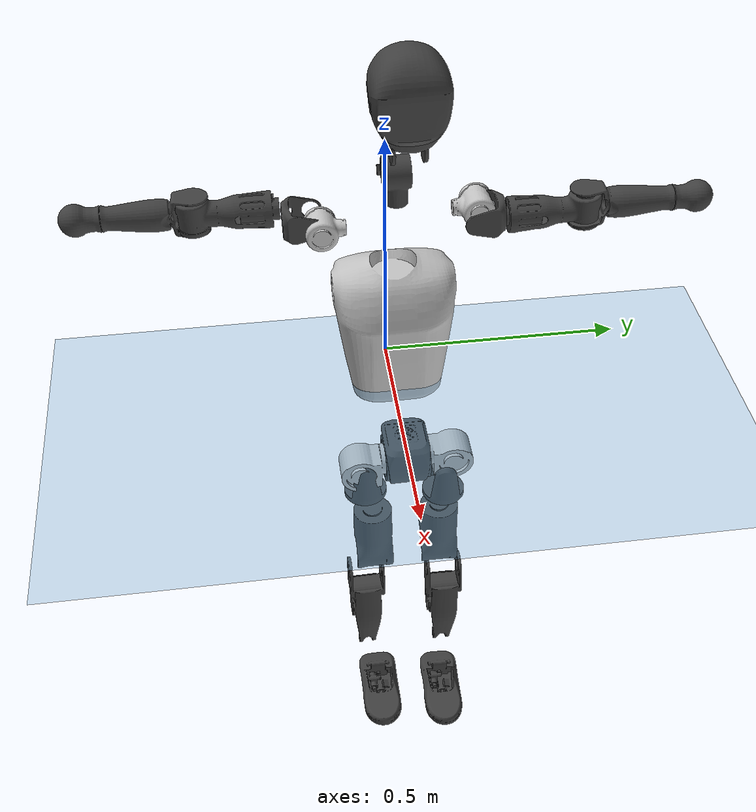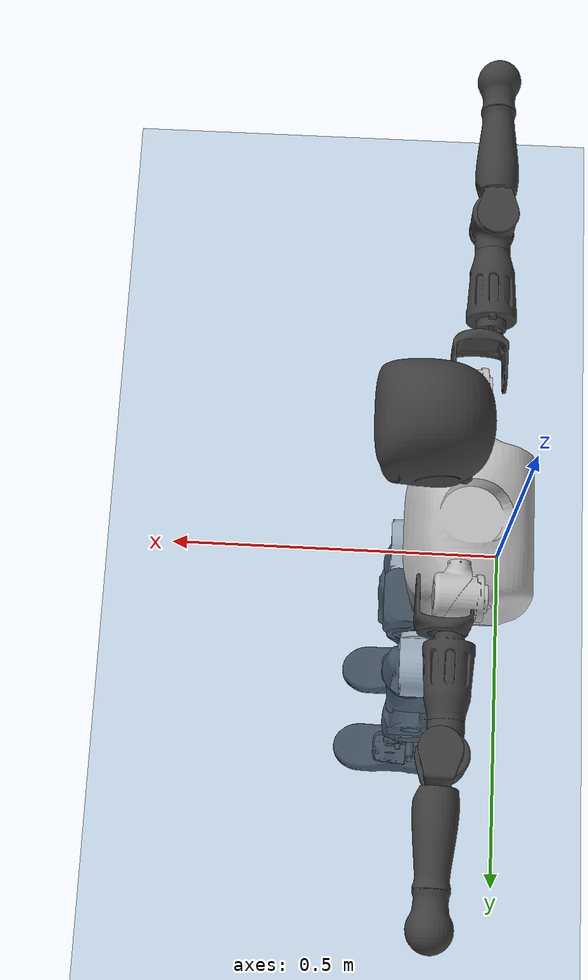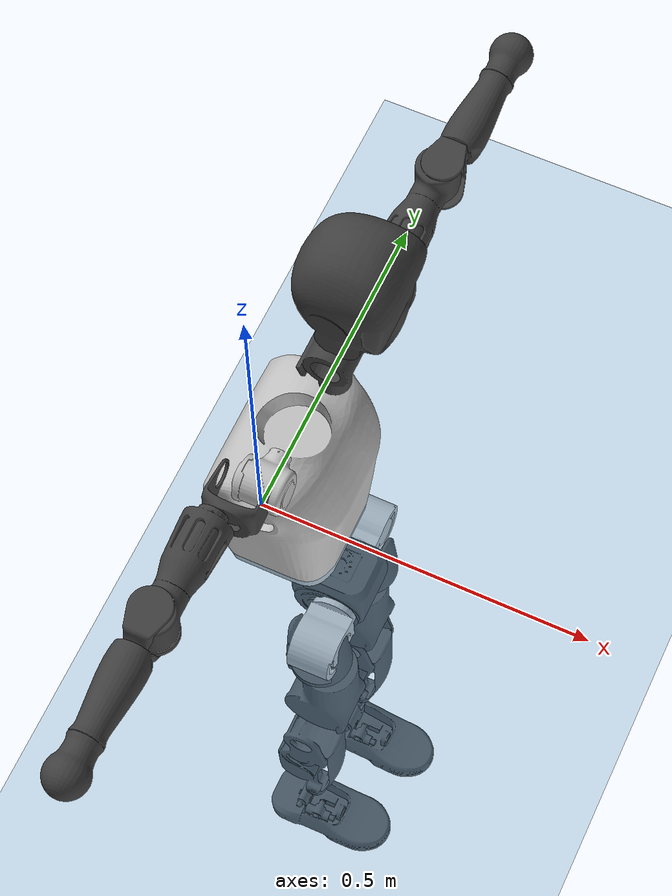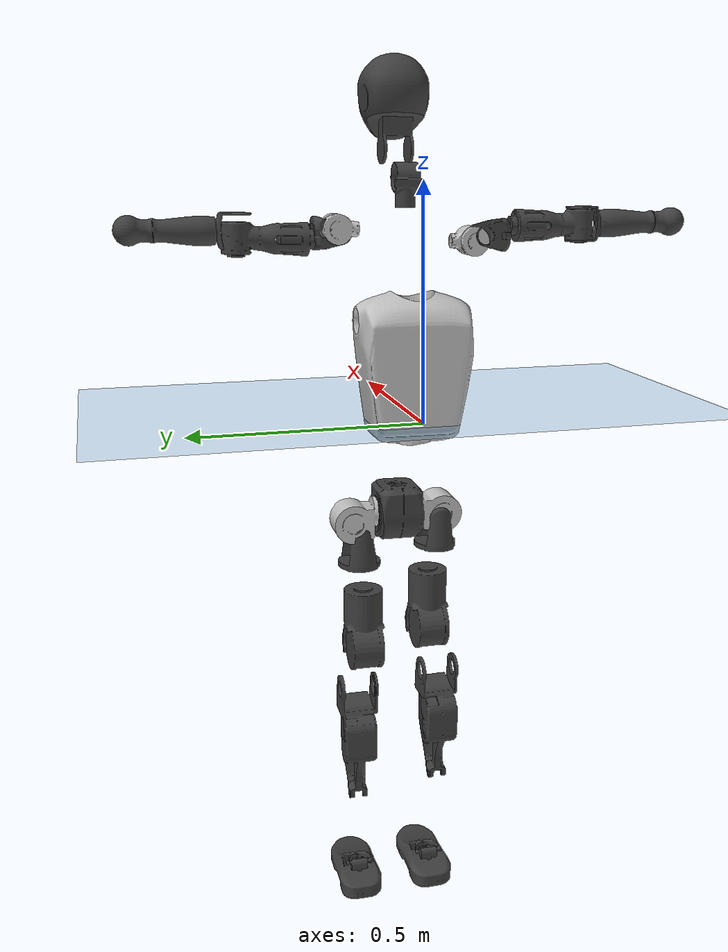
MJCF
<mujoco model="T1">
  <compiler angle="radian" assetdir="assets" balanceinertia="true" inertiafromgeom="false"/>

  <option timestep="0.005" density="1.2" viscosity="2e-05"/>

  <size nkey="1"/>

  <visual>
    <quality shadowsize="8192"/>
    <map shadowclip="0.5"/>
  </visual>

  <default>
    <default class="/">
      <joint armature="0.01" damping="0.01" frictionloss="0.1"/>
      <geom contype="0" conaffinity="0" group="1" solref="-1000 -80"/>
      <site size="0.01 0.005 0.005" group="5"/>
      <general forcelimited="true" biastype="affine" gainprm="25" biasprm="0 -25 -0.6"/>
      <default class="t1">
        <geom rgba="0.25 0.25 0.25 1"/>
        <default class="visual">
          <geom type="mesh" group="2"/>
        </default>
        <default class="collision">
          <geom group="3"/>
        </default>
        <default class="foot">
          <geom size="0.1115 0.05 0.015" type="box" condim="6" group="4" priority="1" solimp="0.015 1 0.015"/>
        </default>
        <default class="reward_collision_sphere">
          <geom group="5" rgba="1 0 0 1"/>
        </default>
      </default>
    </default>
  </default>

  <asset>
    <texture type="skybox" colorspace="auto" name="//unnamed_texture_0" builtin="gradient" rgb1="0.95 0.95 0.95" rgb2="0.95 0.95 0.95" width="100" height="600"/>
    <texture type="2d" colorspace="auto" name="texplane" builtin="checker" rgb1="0.345 0.575 0.748" rgb2="0.345 0.575 0.748" markrgb="1 1 1" width="512" height="512"/>
    <material name="MatPlane" class="/" texture="texplane" texuniform="true" texrepeat="2 2" specular="0.9"/>
    <mesh name="Trunk" class="/" file="Trunk.stl"/>
    <mesh name="H1" class="/" file="H1.stl"/>
    <mesh name="H2" class="/" file="H2.stl"/>
    <mesh name="AL1" class="/" file="AL1.stl"/>
    <mesh name="AL2" class="/" file="AL2.stl"/>
    <mesh name="AL3" class="/" file="AL3.stl"/>
    <mesh name="left_hand_link" class="/" file="left_hand_link.stl"/>
    <mesh name="AR1" class="/" file="AR1.stl"/>
    <mesh name="AR2" class="/" file="AR2.stl"/>
    <mesh name="AR3" class="/" file="AR3.stl"/>
    <mesh name="right_hand_link" class="/" file="right_hand_link.stl"/>
    <mesh name="Waist" class="/" file="Waist.stl"/>
    <mesh name="Hip_Pitch_Left" class="/" file="Hip_Pitch_Left.stl"/>
    <mesh name="Hip_Roll_Left" class="/" file="Hip_Roll_Left.stl"/>
    <mesh name="Hip_Yaw_Left" class="/" file="Hip_Yaw_Left.stl"/>
    <mesh name="Shank_Left" class="/" file="Shank_Left.stl"/>
    <mesh name="Ankle_Cross_Left" class="/" file="Ankle_Cross_Left.stl"/>
    <mesh name="left_foot_link" class="/" file="left_foot_link.stl"/>
    <mesh name="Hip_Pitch_Right" class="/" file="Hip_Pitch_Right.stl"/>
    <mesh name="Hip_Roll_Right" class="/" file="Hip_Roll_Right.stl"/>
    <mesh name="Hip_Yaw_Right" class="/" file="Hip_Yaw_Right.stl"/>
    <mesh name="Shank_Right" class="/" file="Shank_Right.stl"/>
    <mesh name="Ankle_Cross_Right" class="/" file="Ankle_Cross_Right.stl"/>
    <mesh name="right_foot_link" class="/" file="right_foot_link.stl"/>
  </asset>

  <worldbody>
    <geom name="floor" class="/" size="100 100 0.125" type="plane" group="0" material="MatPlane"/>
    <light name="toplight_shadow" class="/" pos="0 0 5" dir="0.0990148 0.0990148 -0.990148" type="directional" ambient="0.04 0.04 0.04" diffuse="0.55 0.55 0.55" specular="0.12 0.12 0.12"/>
    <light name="toplight_fill" class="/" pos="0 0 5" dir="0.0990148 0.0990148 -0.990148" type="directional" castshadow="false" ambient="0.04 0.04 0.04" diffuse="0.3 0.3 0.3" specular="0.08 0.08 0.08"/>
    <body name="trunk" childclass="t1" pos="-0.00107024 0.0118179 -0.00514561" quat="0.999973 0.00700652 -0.00213055 0.000224844">
      <inertial pos="0.0878785 0.00992155 0.188919" quat="0.997034 0.0162714 -0.0366367 -0.0656908" mass="38.0876" diaginertia="0.81299 0.0801675 0.760307"/>
      <joint name="//unnamed_joint_0" type="free" armature="0" damping="0" frictionloss="0"/>
      <geom name="//unnamed_geom_1" class="visual" rgba="0.76 0.76 0.76 1" mesh="Trunk"/>
      <geom name="//unnamed_geom_2" class="collision" size="0.112225 0.149633 0.22445" pos="0.102533 0 0.211439" type="box"/>
      <geom name="//unnamed_geom_3" class="reward_collision_sphere" size="0.172078" pos="0.102533 0 0.176199"/>
      <geom name="//unnamed_geom_4" class="reward_collision_sphere" size="0.022445" pos="0.102533 0.0865405 0"/>
      <geom name="//unnamed_geom_5" class="reward_collision_sphere" size="0.022445" pos="0.102533 -0.0865405 0"/>
      <geom name="//unnamed_geom_6" class="reward_collision_sphere" size="0.022445" pos="0.102533 0.108939 0.317158"/>
      <geom name="//unnamed_geom_7" class="reward_collision_sphere" size="0.022445" pos="0.102533 -0.108939 0.317158"/>
      <site name="imu" pos="-0.0714843 0.00173071 0.0706746" size="0.0149633"/>
      <camera name="track" pos="0 -2.03625 0" quat="0.707107 0.707107 0 0" mode="trackcom"/>
      <camera name="ego_camera" pos="0.208485 0 0.740036" quat="-0.5 -0.5 0.5 0.5"/>
      <body name="H1" pos="0.122221 0.000421551 0.445895" quat="0.999999 -0.000911419 0.000153243 -0.000785594">
        <inertial pos="0.00014516 0.00376321 0.100589" quat="0.763558 -0.0129632 0.0192724 0.645322" mass="1.44949" diaginertia="0.0043032 0.000228774 0.00251696"/>
        <joint name="AAHead_yaw" pos="0 0 0" axis="0.000713253 -0.035104 0.999383" range="-1.8553 1.47892" armature="0.00181755" damping="0" frictionloss="0.0221695"/>
        <geom name="//unnamed_geom_8" class="visual" mesh="H1"/>
        <body name="H2" pos="0.0108583 0.0197447 0.117484" quat="0.999987 0.00220408 0.0023698 0.00404228">
          <inertial pos="-0.00214834 0.0171611 0.192576" quat="0.993272 0.11158 -0.0245078 -0.0189842" mass="1.7096" diaginertia="0.0257185 0.00244214 0.0264989"/>
          <joint name="Head_pitch" pos="0 0 0" axis="0.013816 -0.998851 -0.0458933" stiffness="0.00327387" range="-1.34677 0.517708" armature="0.00481496" damping="0.0899475" frictionloss="0.101885"/>
          <geom name="//unnamed_geom_9" class="visual" mesh="H2"/>
          <geom name="//unnamed_geom_10" class="collision" size="0.119707" pos="0.0170889 0 0.193819"/>
          <geom name="//unnamed_geom_11" class="reward_collision_sphere" size="0.13467" pos="0.0341778 0 0.176199"/>
        </body>
      </body>
      <body name="AL1" pos="0.0907694 0.109431 0.403492" quat="0.99996 0.00571312 -0.00231597 -0.00654913">
        <inertial pos="0.0121696 0.0399408 0.00535659" quat="0.504362 0.501095 -0.504178 0.490232" mass="2.06628" diaginertia="0.022926 0.00199964 0.00687499"/>
        <joint name="Left_Shoulder_Pitch" pos="0 0 0" axis="0.0610913 0.99738 0.0387512" range="-3.05888 0.856223" armature="0.0138136" damping="0.0909782" frictionloss="0.0595084"/>
        <geom name="//unnamed_geom_12" class="visual" rgba="0.76 0.76 0.76 1" mesh="AL1"/>
        <body name="AL2" pos="0.0169822 0.0378762 -0.00976028" quat="0.999999 -0.000654802 0.000959607 0.000327506">
          <inertial pos="0.0174303 0.0211542 0.0115778" quat="0.490702 0.497661 -0.471368 0.53792" mass="0.480496" diaginertia="0.00463616 0.000285876 0.00289698"/>
          <joint name="Left_Shoulder_Roll" pos="0 0 0" axis="-0.999422 0.0101789 -0.0324303" stiffness="0.0981452" range="-1.80426 1.63768" armature="0.00175507" damping="0" frictionloss="0.137181"/>
          <geom name="//unnamed_geom_13" class="visual" mesh="AL2"/>
          <body name="AL3" pos="-0.00946597 0.0666164 -0.0122219" quat="0.999992 0.00245925 0.0014737 -0.00281881">
            <inertial pos="-0.0166042 0.104493 -0.010516" quat="0.69632 0.715151 0.00143315 -0.0607804" mass="4.94203" diaginertia="0.17875 0.0157072 0.014859"/>
            <joint name="Left_Elbow_Pitch" pos="0 0 0" axis="-0.0511441 -0.998359 0.0257628" stiffness="0.0529768" range="-1.90147 2.47961" armature="0.000780224" damping="0.0193396" frictionloss="0.180912"/>
            <geom name="//unnamed_geom_14" class="visual" mesh="AL3"/>
            <geom name="//unnamed_geom_15" class="collision" size="0.04489 0.112225" pos="0 0.0509062 0" quat="0.707105 0.707108 0 0" type="cylinder"/>
            <geom name="//unnamed_geom_16" class="reward_collision_sphere" size="0.053868"/>
            <body name="left_hand_link" pos="0.00821061 0.142555 0.0135129" quat="0.999959 -0.00629689 -0.00395441 -0.00517466">
              <inertial pos="0.0183411 0.100842 0.00245673" quat="0.694094 0.718932 0.03106 -0.0201398" mass="1.1663" diaginertia="0.146895 0.00787909 0.00294505"/>
              <joint name="Left_Elbow_Yaw" pos="0 0 0" axis="0.000199827 4.81704e-05 1" range="-2.33838 0.373198" armature="0.0201393" damping="0" frictionloss="0.121445"/>
              <geom name="//unnamed_geom_17" class="visual" mesh="left_hand_link"/>
              <geom name="//unnamed_geom_18" class="collision" size="0.04489 0.130929" pos="0 0.132356 0" quat="0.707105 0.707108 0 0" type="cylinder"/>
              <geom name="//unnamed_geom_19" class="reward_collision_sphere" size="0.0748167"/>
              <geom name="//unnamed_geom_20" class="reward_collision_sphere" size="0.0523717" pos="0 0.111994 0"/>
              <geom name="//unnamed_geom_21" class="reward_collision_sphere" size="0.0523717" pos="0 0.218897 0"/>
            </body>
          </body>
        </body>
      </body>
      <body name="AR1" pos="0.0881135 -0.0911665 0.379132" quat="0.999988 -0.00309215 -0.0036921 0.000337958">
        <inertial pos="0.012102 -0.0262874 0.00822788" quat="0.487895 0.546767 -0.467513 0.494405" mass="1.88519" diaginertia="0.0273713 0.00180282 0.00518721"/>
        <joint name="Right_Shoulder_Pitch" pos="0 0 0" axis="0.0681529 -0.996705 -0.0439855" stiffness="0.096509" range="-1.30349 3.55107" armature="0.00261353" damping="0.0650786" frictionloss="0.23522"/>
        <geom name="//unnamed_geom_22" class="visual" rgba="0.76 0.76 0.76 1" mesh="AR1"/>
        <body name="AR2" pos="-0.0186063 -0.061378 0.0126462" quat="0.999963 -0.002021 0.00827307 -0.000850381">
          <inertial pos="0.0199888 -0.0429928 0.0100287" quat="0.515467 0.494919 -0.541878 0.4424" mass="0.643802" diaginertia="0.00579432 0.000293476 0.00326195"/>
          <joint name="Right_Shoulder_Roll" pos="0 0 0" axis="-0.999366 -0.0306886 0.018062" stiffness="0.0271578" range="-1.94059 1.37851" armature="0.0131034" damping="0" frictionloss="0.00341453"/>
          <geom name="//unnamed_geom_23" class="visual" mesh="AR2"/>
          <body name="AR3" pos="-0.0127611 -0.071566 0.0198148" quat="1 3.34655e-05 -0.00032663 -0.000200766">
            <inertial pos="-0.00461421 -0.0697061 0.0107657" quat="0.68597 0.723524 -0.0746025 0.0198179" mass="3.28492" diaginertia="0.183451 0.0148968 0.00808317"/>
            <joint name="Right_Elbow_Pitch" pos="0 0 0" axis="-0.067436 0.996551 0.0483523" range="-1.93721 2.52483" armature="0.0286852" damping="0" frictionloss="0.0485689"/>
            <geom name="//unnamed_geom_24" class="visual" mesh="AR3"/>
            <geom name="//unnamed_geom_25" class="collision" size="0.04489 0.112225" pos="0 -0.0509062 0" quat="0.707105 0.707108 0 0" type="cylinder"/>
            <geom name="//unnamed_geom_26" class="reward_collision_sphere" size="0.053868"/>
            <body name="right_hand_link" pos="-0.00332221 -0.144056 0.00179028" quat="0.99997 -0.00763558 -0.00115446 -0.00115866">
              <inertial pos="-0.00500826 -0.10019 -0.0162982" quat="0.706295 0.707917 0.00090884 0.000331336" mass="1.36494" diaginertia="0.145939 0.00952018 0.00417671"/>
              <joint name="Right_Elbow_Yaw" pos="0 0 0" axis="-0.0655867 -0.00240128 0.997844" range="0.0995629 2.1676" armature="0.00177776" damping="0.104485" frictionloss="0.0409651"/>
              <geom name="//unnamed_geom_27" class="visual" mesh="right_hand_link"/>
              <geom name="//unnamed_geom_28" class="collision" size="0.04489 0.130929" pos="0 -0.132356 0" quat="0.707105 0.707108 0 0" type="cylinder"/>
              <geom name="//unnamed_geom_29" class="reward_collision_sphere" size="0.0748167"/>
              <geom name="//unnamed_geom_30" class="reward_collision_sphere" size="0.0523717" pos="0 -0.111994 0"/>
              <geom name="//unnamed_geom_31" class="reward_collision_sphere" size="0.0523717" pos="0 -0.218897 0"/>
            </body>
          </body>
        </body>
      </body>
      <body name="Waist" pos="0.105553 0.0158961 -0.22205" quat="1 0.000106012 0.000239624 0.000363033">
        <inertial pos="0.0209062 0.00772809 0.00595226" quat="0.980215 0.0815258 -0.179244 0.0201086" mass="10.6118" diaginertia="0.0891671 0.00768295 0.103456"/>
        <joint name="Waist" pos="0 0 0" axis="-0.081115 -0.0203618 0.996497" stiffness="0.0621778" range="-1.71855 1.91023" armature="0.0122123" damping="0" frictionloss="0.0271015"/>
        <geom name="//unnamed_geom_32" class="visual" mesh="Waist"/>
        <body name="Hip_Pitch_Left" pos="-0.00476352 0.105974 0.00739029" quat="0.999983 0.00334984 0.000325587 -0.00481521">
          <inertial pos="0.00679043 0.00394281 -0.0267295" quat="0.965856 0.257753 0.0260684 -0.00234952" mass="2.74533" diaginertia="0.0260389 0.00116659 0.0171634"/>
          <joint name="Left_Hip_Pitch" pos="0 0 0" axis="-0.0779072 0.995092 -0.0610039" stiffness="0.0917025" range="-1.83597 1.20497" armature="0.00649879" damping="0.0822039" frictionloss="0.180705"/>
          <geom name="//unnamed_geom_33" class="visual" rgba="0.76 0.76 0.76 1" mesh="Hip_Pitch_Left"/>
          <body name="Hip_Roll_Left" pos="0.00913708 -0.0198696 -0.051325" quat="0.999953 -0.00716317 -0.00516058 -0.00401871">
            <inertial pos="0.0173456 -0.00336128 -0.101907" quat="0.673232 -0.00469892 -0.00635139 0.739389" mass="1.74561" diaginertia="0.0246458 0.00192948 0.0106885"/>
            <joint name="Left_Hip_Roll" pos="0 0 0" axis="-0.995873 -0.0907502 0.000620811" range="-1.78333 0.271712" armature="0.0238931" damping="0.0417898" frictionloss="0.205147"/>
            <geom name="//unnamed_geom_34" class="visual" mesh="Hip_Roll_Left"/>
            <geom name="//unnamed_geom_35" class="reward_collision_sphere" size="0.0822984"/>
            <body name="Hip_Yaw_Left" pos="-0.0104503 -0.00664033 -0.133517" quat="1 -0.000465886 7.30588e-05 0.000325595">
              <inertial pos="-0.0175223 -0.00852079 -0.157978" quat="0.668213 -0.00636616 -0.109997 0.735766" mass="10.0061" diaginertia="0.367195 0.0364346 0.0531282"/>
              <joint name="Left_Hip_Yaw" pos="0 0 0" axis="0.0175585 0.0129919 -0.999761" stiffness="0.0144204" range="-0.710979 0.964582" armature="0.0153155" damping="0" frictionloss="0.107777"/>
              <geom name="//unnamed_geom_36" class="visual" mesh="Hip_Yaw_Left"/>
              <geom name="//unnamed_geom_37" class="collision" size="0.0748167 0.119707" type="cylinder"/>
              <body name="Shank_Left" pos="-0.0142277 0.0170929 -0.240036" quat="0.999999 0.00107505 -0.000474637 -0.000435914">
                <inertial pos="2.21895e-05 0.0152463 -0.213737" quat="0.995427 -0.00480338 0.0533974 0.0790587" mass="4.1103" diaginertia="0.424221 0.0332385 0.0322326"/>
                <joint name="Left_Knee_Pitch" pos="0 0 0" axis="-0.0483006 0.99883 -0.00237879" range="-0.201852 2.57558" armature="0.00307004" damping="0.0864512" frictionloss="0.211139"/>
                <geom name="//unnamed_geom_38" class="visual" mesh="Shank_Left"/>
                <geom name="//unnamed_geom_39" class="collision" size="0.0748167 0.112225" pos="0 0 -0.211439" type="cylinder"/>
                <geom name="//unnamed_geom_40" class="reward_collision_sphere" size="0.0972617"/>
                <body name="Ankle_Cross_Left" pos="-0.00323119 -0.0143357 -0.477558" quat="0.999964 -0.0026644 0.00620965 -0.00521322">
                  <inertial pos="0.00506967 0.0188028 -0.00767417" quat="0.456212 0.542372 0.592119 0.383533" mass="0.252716" diaginertia="0.000465441 2.35817e-05 0.000167191"/>
                  <joint name="Left_Ankle_Pitch" pos="0 0 0" axis="-0.00550743 0.99775 0.066823" stiffness="0.0414485" range="-1.02154 0.164273" armature="0.0217606" damping="0.0358216" frictionloss="0.108057"/>
                  <geom name="//unnamed_geom_41" class="visual" mesh="Ankle_Cross_Left"/>
                  <body name="left_foot_link" pos="0.0159382 0.0184889 -0.0117955" quat="0.999999 -0.000676979 0.00120893 -0.000141775">
                    <inertial pos="-0.0170402 0.00502366 -0.0353117" quat="0.00277066 0.633947 -0.0375406 0.77246" mass="2.35524" diaginertia="0.0475474 0.00262126 0.0461761"/>
                    <joint name="Left_Ankle_Roll" pos="0 0 0" axis="-0.999921 -0.00355738 -0.0120724" range="-0.377515 0.453085" armature="0.0283936" damping="0.0780348" frictionloss="0.175699"/>
                    <geom name="//unnamed_geom_42" class="visual" mesh="left_foot_link"/>
                    <geom name="left_foot" class="foot" size="0.131314 0.0994821 0.0152365" pos="0.0170889 0 -0.0264298"/>
                    <geom name="//unnamed_geom_44" class="reward_collision_sphere" size="0.0778094" pos="0.0170889 0 -0.0264298"/>
                    <geom name="//unnamed_geom_45" class="reward_collision_sphere" size="0.04489" pos="0.162345 -0.0234169 -0.0264298"/>
                    <geom name="//unnamed_geom_46" class="reward_collision_sphere" size="0.04489" pos="-0.119622 -0.0234169 -0.0264298"/>
                    <site name="left_foot" class="foot" pos="0.0170889 0 -0.0264298" size="0.0149633"/>
                  </body>
                </body>
              </body>
            </body>
          </body>
        </body>
        <body name="Hip_Pitch_Right" pos="0.0152836 -0.105246 0.0135742" quat="0.999954 0.00246358 -0.00917226 0.00123259">
          <inertial pos="0.00801924 0.0275867 -0.0323166" quat="0.975493 -0.206879 0.0626579 -0.0410902" mass="3.49017" diaginertia="0.0323099 0.00183748 0.0290166"/>
          <joint name="Right_Hip_Pitch" pos="0 0 0" axis="-0.000666157 -0.999908 0.0135728" stiffness="0.0481362" range="-1.27946 1.76235" armature="0.0236815" damping="0" frictionloss="0.0120297"/>
          <geom name="//unnamed_geom_47" class="visual" rgba="0.76 0.76 0.76 1" mesh="Hip_Pitch_Right"/>
          <body name="Hip_Roll_Right" pos="-0.00695514 0.0102899 -0.0248922" quat="0.999999 2.86849e-05 0.000722323 0.00111143">
            <inertial pos="0.0191988 -0.0191923 -0.0760978" quat="0.705165 -0.0478382 0.0299623 0.706793" mass="1.20212" diaginertia="0.023146 0.00160396 0.00848076"/>
            <joint name="Right_Hip_Roll" pos="0 0 0" axis="-0.999999 -6.27026e-05 -0.00125212" stiffness="0.00747546" range="-0.0834253 1.53622" armature="0.00679196" damping="0" frictionloss="0.10301"/>
            <geom name="//unnamed_geom_48" class="visual" mesh="Hip_Roll_Right"/>
            <geom name="//unnamed_geom_49" class="reward_collision_sphere" size="0.0822984"/>
            <body name="Hip_Yaw_Right" pos="0.00472934 0.0135744 -0.137179" quat="0.999985 -0.00543897 0.00110933 0.000162145">
              <inertial pos="-0.0255534 0.0134292 -0.165273" quat="0.713246 -0.0320819 -0.0276852 0.699632" mass="7.31063" diaginertia="0.293648 0.0272373 0.0415996"/>
              <joint name="Right_Hip_Yaw" pos="0 0 0" axis="-0.00342366 0.00034134 -0.999994" stiffness="0.0272624" range="-0.859282 1.32078" armature="0.0299215" damping="0" frictionloss="0.0172547"/>
              <geom name="//unnamed_geom_50" class="visual" mesh="Hip_Yaw_Right"/>
              <geom name="//unnamed_geom_51" class="collision" size="0.0748167 0.119707" type="cylinder"/>
              <body name="Shank_Right" pos="-0.0339584 -0.0179372 -0.243073" quat="0.999963 -0.00523268 0.00173675 0.00655372">
                <inertial pos="-0.0140807 -0.0152481 -0.234526" quat="0.99774 -0.0465372 0.0317885 -0.0365828" mass="7.14155" diaginertia="0.594372 0.0407065 0.0251505"/>
                <joint name="Right_Knee_Pitch" pos="0 0 0" axis="-0.081246 -0.996587 -0.0146168" range="-2.66265 0.315239" armature="0.0201905" damping="0" frictionloss="0.225739"/>
                <geom name="//unnamed_geom_52" class="visual" mesh="Shank_Right"/>
                <geom name="//unnamed_geom_53" class="collision" size="0.0748167 0.112225" pos="0 0 -0.211439" type="cylinder"/>
                <geom name="//unnamed_geom_54" class="reward_collision_sphere" size="0.0972617"/>
                <body name="Ankle_Cross_Right" pos="-0.0121876 0.0162061 -0.492032" quat="0.99995 0.00505922 -0.00523028 -0.00678875">
                  <inertial pos="0.00372725 0.00984431 -0.0291222" quat="0.492445 0.549893 0.535071 0.410871" mass="0.229445" diaginertia="0.00037624 2.80056e-05 0.000230243"/>
                  <joint name="Right_Ankle_Pitch" pos="0 0 0" axis="-0.0278819 -0.998734 0.0418748" stiffness="0.0348946" range="-0.0282181 0.758947" armature="0.0109056" damping="0.0222276" frictionloss="0.198617"/>
                  <geom name="//unnamed_geom_55" class="visual" mesh="Ankle_Cross_Right"/>
                  <body name="right_foot_link" pos="0.00918903 0.0167488 -0.00951877" quat="0.999993 0.00154754 -0.00117706 -0.00331434">
                    <inertial pos="0.00447898 -0.00969742 -0.000236564" quat="0.00935361 0.644582 0.025812 0.764042" mass="2.57005" diaginertia="0.036644 0.00267537 0.0436226"/>
                    <joint name="Right_Ankle_Roll" pos="0 0 0" axis="-0.997482 0.00161664 0.0709034" stiffness="0.0667611" range="-0.837297 0.407224" armature="0.00216284" damping="0" frictionloss="0.25624"/>
                    <geom name="//unnamed_geom_56" class="visual" mesh="right_foot_link"/>
                    <geom name="right_foot" class="foot" size="0.191086 0.100881 0.0238003" pos="0.0170889 0 -0.0264298"/>
                    <geom name="//unnamed_geom_58" class="reward_collision_sphere" size="0.0598534"/>
                    <geom name="//unnamed_geom_59" class="reward_collision_sphere" size="0.04489" pos="0.0170889 0 -0.0264298"/>
                    <geom name="//unnamed_geom_60" class="reward_collision_sphere" size="0.04489" pos="0.162345 0.0234169 -0.0264298"/>
                    <geom name="//unnamed_geom_61" class="reward_collision_sphere" size="0.04489" pos="-0.119622 0.0234169 -0.0264298"/>
                    <site name="right_foot" class="foot" pos="0.0170889 0 -0.0264298" size="0.0149633"/>
                  </body>
                </body>
              </body>
            </body>
          </body>
        </body>
      </body>
    </body>
  </worldbody>

  <contact>
    <pair class="/" geom1="floor" geom2="left_foot" name="//unnamed_contact_0"/>
    <pair class="/" geom1="floor" geom2="right_foot" name="//unnamed_contact_1"/>
  </contact>

  <actuator>
    <general name="AAHead_yaw" class="/" joint="AAHead_yaw" forcerange="-15.4994 15.4994" gainprm="41.638" biasprm="0 -41.638 -0.913012"/>
    <general name="Head_pitch" class="/" joint="Head_pitch" forcerange="-4.98942 4.98942" gainprm="41.638" biasprm="0 -41.638 -0.913012"/>
    <general name="Left_Shoulder_Pitch" class="/" joint="Left_Shoulder_Pitch" forcerange="-33.667 33.667" gainprm="41.638" biasprm="0 -41.638 -0.913012"/>
    <general name="Left_Shoulder_Roll" class="/" joint="Left_Shoulder_Roll" forcerange="-10.3046 10.3046" gainprm="41.638" biasprm="0 -41.638 -0.913012"/>
    <general name="Left_Elbow_Pitch" class="/" joint="Left_Elbow_Pitch" forcerange="-33.1185 33.1185" gainprm="41.638" biasprm="0 -41.638 -0.913012"/>
    <general name="Left_Elbow_Yaw" class="/" joint="Left_Elbow_Yaw" forcerange="-24.2982 24.2982" gainprm="41.638" biasprm="0 -41.638 -0.913012"/>
    <general name="Right_Shoulder_Pitch" class="/" joint="Right_Shoulder_Pitch" forcerange="-27.0523 27.0523" gainprm="41.638" biasprm="0 -41.638 -0.913012"/>
    <general name="Right_Shoulder_Roll" class="/" joint="Right_Shoulder_Roll" forcerange="-36.9607 36.9607" gainprm="41.638" biasprm="0 -41.638 -0.913012"/>
    <general name="Right_Elbow_Pitch" class="/" joint="Right_Elbow_Pitch" forcerange="-19.2604 19.2604" gainprm="41.638" biasprm="0 -41.638 -0.913012"/>
    <general name="Right_Elbow_Yaw" class="/" joint="Right_Elbow_Yaw" forcerange="-34.8421 34.8421" gainprm="41.638" biasprm="0 -41.638 -0.913012"/>
    <general name="Waist" class="/" joint="Waist" forcerange="-72.7623 72.7623" gainprm="41.638" biasprm="0 -41.638 -0.913012"/>
    <general name="Left_Hip_Pitch" class="/" joint="Left_Hip_Pitch" forcerange="-91.2315 91.2315" gainprm="41.638" biasprm="0 -41.638 -0.913012"/>
    <general name="Left_Hip_Roll" class="/" joint="Left_Hip_Roll" forcerange="-51.5839 51.5839" gainprm="41.638" biasprm="0 -41.638 -0.913012"/>
    <general name="Left_Hip_Yaw" class="/" joint="Left_Hip_Yaw" forcerange="-57.6989 57.6989" gainprm="41.638" biasprm="0 -41.638 -0.913012"/>
    <general name="Left_Knee_Pitch" class="/" joint="Left_Knee_Pitch" forcerange="-142.636 142.636" gainprm="41.638" biasprm="0 -41.638 -0.913012"/>
    <general name="Left_Ankle_Pitch" class="/" joint="Left_Ankle_Pitch" forcerange="-8.61012 8.61012" gainprm="41.638" biasprm="0 -41.638 -0.913012"/>
    <general name="Left_Ankle_Roll" class="/" joint="Left_Ankle_Roll" forcerange="-39.0914 39.0914" gainprm="41.638" biasprm="0 -41.638 -0.913012"/>
    <general name="Right_Hip_Pitch" class="/" joint="Right_Hip_Pitch" forcerange="-64.0438 64.0438" gainprm="41.638" biasprm="0 -41.638 -0.913012"/>
    <general name="Right_Hip_Roll" class="/" joint="Right_Hip_Roll" forcerange="-71.4224 71.4224" gainprm="41.638" biasprm="0 -41.638 -0.913012"/>
    <general name="Right_Hip_Yaw" class="/" joint="Right_Hip_Yaw" forcerange="-15.1159 15.1159" gainprm="41.638" biasprm="0 -41.638 -0.913012"/>
    <general name="Right_Knee_Pitch" class="/" joint="Right_Knee_Pitch" forcerange="-60.6445 60.6445" gainprm="41.638" biasprm="0 -41.638 -0.913012"/>
    <general name="Right_Ankle_Pitch" class="/" joint="Right_Ankle_Pitch" forcerange="-32.5214 32.5214" gainprm="41.638" biasprm="0 -41.638 -0.913012"/>
    <general name="Right_Ankle_Roll" class="/" joint="Right_Ankle_Roll" forcerange="-24.7637 24.7637" gainprm="41.638" biasprm="0 -41.638 -0.913012"/>
  </actuator>

  <sensor>
    <gyro site="imu" name="imu_angular_velocity"/>
    <velocimeter site="imu" name="imu_linear_velocity"/>
    <framelinvel objtype="site" objname="left_foot" name="left_foot_global_linear_velocity"/>
    <framelinvel objtype="site" objname="right_foot" name="right_foot_global_linear_velocity"/>
  </sensor>

  <keyframe>
    <key name="home" qpos="0 0 0.6385 1 0 0 0 0 0 0 1.4 0 -0.4 0 -1.4 0 0.4 0 -0.4 0 0 0.8 -0.4 0 0.4 0 0 -0.8 0.4 0"/>
  </keyframe>
</mujoco>
